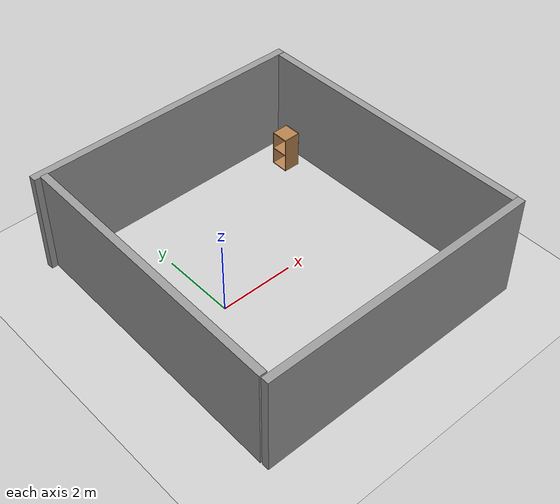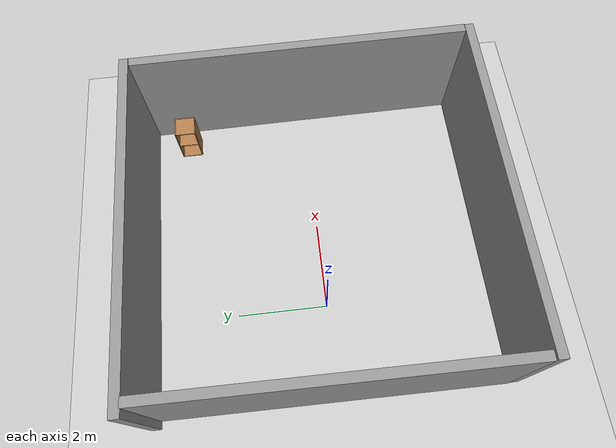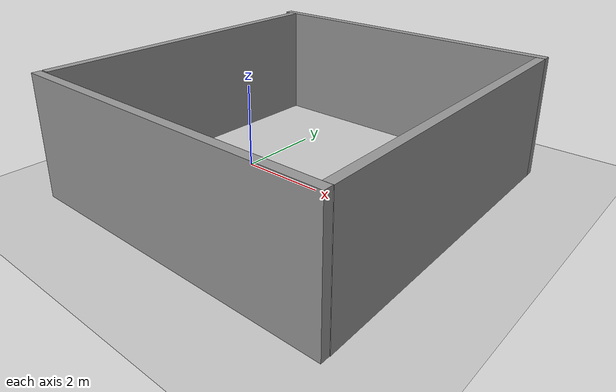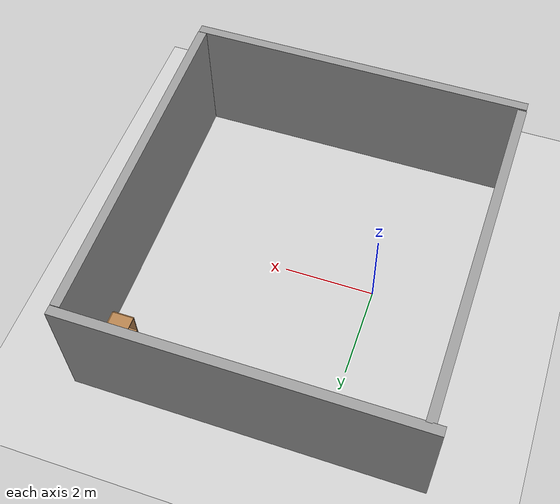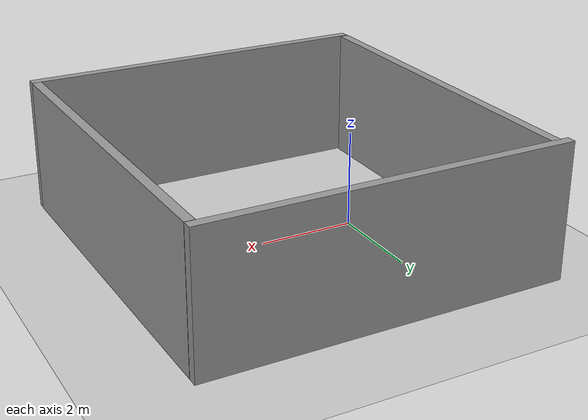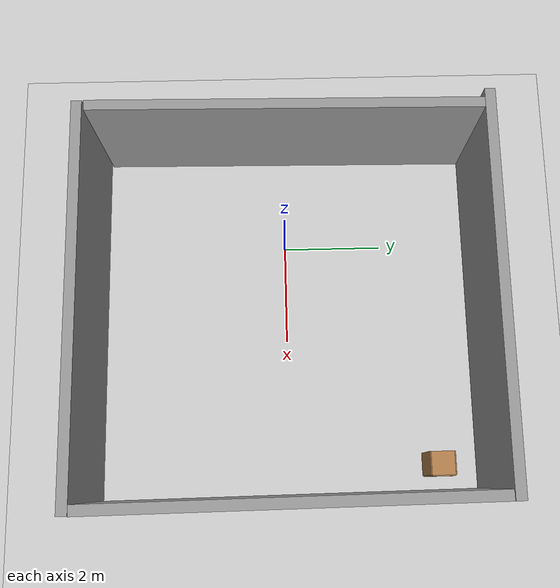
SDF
<sdf version="1.6">
 <world name="default">
  <light name="sun" type="directional">
   <pose>0 0 10 0 -0 0</pose>
   <diffuse>0.8 0.8 0.8 1</diffuse>
   <specular>0.2 0.2 0.2 1</specular>
   <attenuation>
    <range>1000</range>
    <constant>0.9</constant>
    <linear>0.01</linear>
    <quadratic>0.001</quadratic>
   </attenuation>
   <direction>-0.5 0.1 -0.9</direction>
  </light>
  <gravity>0 0 -9.8</gravity>
  <magnetic_field>6e-06 2.3e-05 -4.2e-05</magnetic_field>
  <atmosphere type="adiabatic"/>
  <physics name="default_physics" default="0" type="ode">
   <max_step_size>0.001</max_step_size>
   <real_time_factor>1</real_time_factor>
   <real_time_update_rate>1000</real_time_update_rate>
  </physics>
  <scene><ambient>0.4 0.4 0.4 1</ambient><background>0.7 0.7 0.7 1</background><shadows>1</shadows></scene>
  <spherical_coordinates>
   <surface_model>EARTH_WGS84</surface_model>
   <latitude_deg>0</latitude_deg>
   <longitude_deg>0</longitude_deg>
   <elevation>0</elevation>
   <heading_deg>0</heading_deg>
  </spherical_coordinates>
  <model name="cabinet">
   <static>1</static>
   <link name="cabinet_bottom_plate">
    <inertial>
     <pose>0 0 -1 0 -0 0</pose>
     <inertia><ixx>2.05</ixx><ixy>0</ixy><ixz>0</ixz><iyy>2.05</iyy><iyz>0</iyz><izz>2.05</izz></inertia>
     <mass>25</mass>
    </inertial>
    <collision name="cabinet_bottom_plate_geom">
     <pose>0 0 0.01 0 -0 0</pose>
     <geometry><box><size>0.45 0.45 0.02</size></box></geometry>
    </collision>
    <visual name="cabinet_bottom_plate_geom_visual">
     <pose>0 0 0.01 0 -0 0</pose>
     <geometry><box><size>0.45 0.45 0.02</size></box></geometry>
     <material>
      <script><uri>file://media/materials/scripts/gazebo.material</uri><name>Gazebo/Wood</name></script>
     </material>
    </visual>
    <collision name="cabinet_bottom_plate_geom_cabinet_back_plate">
     <pose>0.235 0 0.51 0 -0 0</pose>
     <geometry><box><size>0.02 0.45 1.02</size></box></geometry>
    </collision>
    <visual name="cabinet_bottom_plate_geom_cabinet_back_plate_visual">
     <pose>0.235 0 0.51 0 -0 0</pose>
     <geometry><box><size>0.02 0.45 1.02</size></box></geometry>
     <material>
      <script><uri>file://media/materials/scripts/gazebo.material</uri><name>Gazebo/Wood</name></script>
     </material>
    </visual>
    <collision name="cabinet_bottom_plate_geom_cabinet_left_plate">
     <pose>0 0.235 0.51 0 -0 0</pose>
     <geometry><box><size>0.45 0.02 1.02</size></box></geometry>
    </collision>
    <visual name="cabinet_bottom_plate_geom_cabinet_left_plate_visual">
     <pose>0 0.235 0.51 0 -0 0</pose>
     <geometry><box><size>0.45 0.02 1.02</size></box></geometry>
     <material>
      <script><uri>file://media/materials/scripts/gazebo.material</uri><name>Gazebo/Wood</name></script>
     </material>
    </visual>
    <collision name="cabinet_bottom_plate_geom_cabinet_middle_plate">
     <pose>0 0 0.51 0 -0 0</pose>
     <geometry><box><size>0.45 0.45 0.02</size></box></geometry>
    </collision>
    <visual name="cabinet_bottom_plate_geom_cabinet_middle_plate_visual">
     <pose>0 0 0.51 0 -0 0</pose>
     <geometry><box><size>0.45 0.45 0.02</size></box></geometry>
     <material>
      <script><uri>file://media/materials/scripts/gazebo.material</uri><name>Gazebo/Wood</name></script>
     </material>
    </visual>
    <collision name="cabinet_bottom_plate_geom_cabinet_right_plate">
     <pose>0 -0.235 0.51 0 -0 0</pose>
     <geometry><box><size>0.45 0.02 1.02</size></box></geometry>
    </collision>
    <visual name="cabinet_bottom_plate_geom_cabinet_right_plate_visual">
     <pose>0 -0.235 0.51 0 -0 0</pose>
     <geometry><box><size>0.45 0.02 1.02</size></box></geometry>
     <material>
      <script><uri>file://media/materials/scripts/gazebo.material</uri><name>Gazebo/Wood</name></script>
     </material>
    </visual>
    <collision name="cabinet_bottom_plate_geom_cabinet_top_plate">
     <pose>0 0 1.01 0 -0 0</pose>
     <geometry><box><size>0.45 0.45 0.02</size></box></geometry>
    </collision>
    <visual name="cabinet_bottom_plate_geom_cabinet_top_plate_visual">
     <pose>0 0 1.01 0 -0 0</pose>
     <geometry><box><size>0.45 0.45 0.02</size></box></geometry>
     <material>
      <script><uri>file://media/materials/scripts/gazebo.material</uri><name>Gazebo/Wood</name></script>
     </material>
    </visual>
   </link>
   <pose>4.56738 2.93049 0 0 -0 0</pose>
  </model>
  <model name="grey_wall">
   <static>1</static>
   <link name="link">
    <pose>0 0 1.4 0 -0 0</pose>
    <collision name="collision"><geometry><box><size>7.5 0.2 2.8</size></box></geometry></collision>
    <visual name="visual">
     <cast_shadows>0</cast_shadows>
     <geometry><box><size>7.5 0.2 2.8</size></box></geometry>
     <material>
      <script>
       <uri>model://grey_wall/materials/scripts</uri>
       <uri>model://grey_wall/materials/textures</uri>
       <name>vrc/grey_wall</name>
      </script>
     </material>
    </visual>
   </link>
   <pose>1.60436 -3.83737 0 0 -0 0</pose>
  </model>
  <model name="grey_wall_0">
   <static>1</static>
   <link name="link">
    <pose>0 0 1.4 0 -0 0</pose>
    <collision name="collision"><geometry><box><size>7.5 0.2 2.8</size></box></geometry></collision>
    <visual name="visual">
     <cast_shadows>0</cast_shadows>
     <geometry><box><size>7.5 0.2 2.8</size></box></geometry>
     <material>
      <script>
       <uri>model://grey_wall/materials/scripts</uri>
       <uri>model://grey_wall/materials/textures</uri>
       <name>vrc/grey_wall</name>
      </script>
     </material>
    </visual>
   </link>
   <pose>1.50567 3.87378 0 0 -0 0</pose>
  </model>
  <model name="grey_wall_1">
   <static>1</static>
   <link name="link">
    <pose>0 0 1.4 0 -0 0</pose>
    <collision name="collision"><geometry><box><size>7.5 0.2 2.8</size></box></geometry></collision>
    <visual name="visual">
     <cast_shadows>0</cast_shadows>
     <geometry><box><size>7.5 0.2 2.8</size></box></geometry>
     <material>
      <script>
       <uri>model://grey_wall/materials/scripts</uri>
       <uri>model://grey_wall/materials/textures</uri>
       <name>vrc/grey_wall</name>
      </script>
     </material>
    </visual>
   </link>
   <pose>5.21059 0.015851 0 0 -0 1.5848</pose>
  </model>
  <model name="grey_wall_2">
   <static>1</static>
   <link name="link">
    <pose>0 0 1.4 0 -0 0</pose>
    <collision name="collision"><geometry><box><size>7.5 0.2 2.8</size></box></geometry></collision>
    <visual name="visual">
     <cast_shadows>0</cast_shadows>
     <geometry><box><size>7.5 0.2 2.8</size></box></geometry>
     <material>
      <script>
       <uri>model://grey_wall/materials/scripts</uri>
       <uri>model://grey_wall/materials/textures</uri>
       <name>vrc/grey_wall</name>
      </script>
     </material>
    </visual>
   </link>
   <pose>-2.01768 0.045814 0 0 -0 1.56005</pose>
  </model>
  <model name="ground_plane">
   <static>1</static>
   <link name="link">
    <collision name="collision">
     <geometry><plane><normal>0 0 1</normal><size>100 100</size></plane></geometry>
     <surface><friction><ode><mu>100</mu><mu2>50</mu2></ode></friction></surface>
    </collision>
    <visual name="visual">
     <cast_shadows>0</cast_shadows>
     <geometry><plane><normal>0 0 1</normal><size>100 100</size></plane></geometry>
     <material>
      <script><uri>file://media/materials/scripts/gazebo.material</uri><name>Gazebo/Grey</name></script>
     </material>
    </visual>
   </link>
  </model>
 </world>
</sdf>
